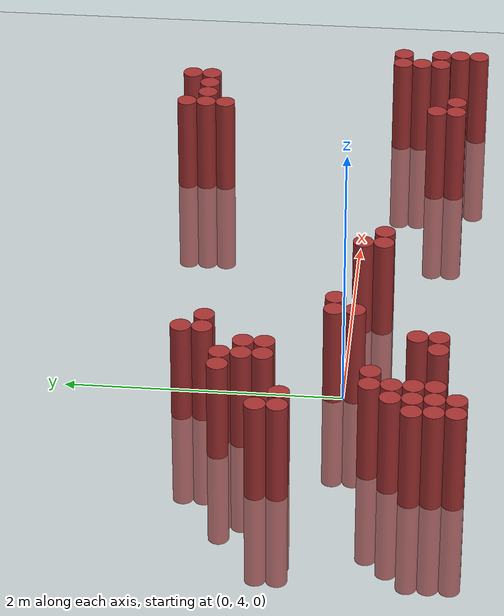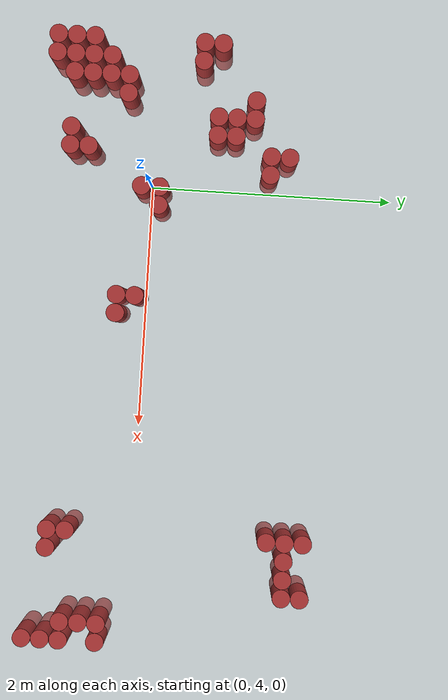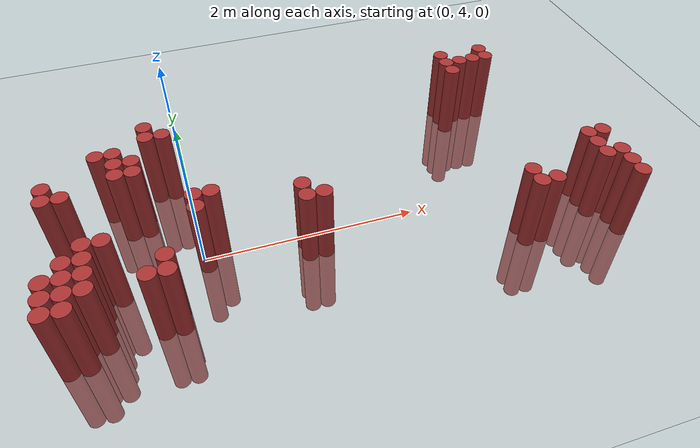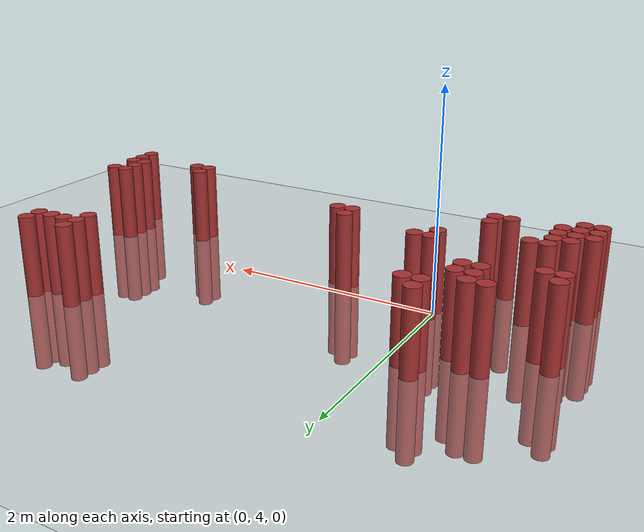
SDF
<sdf version="1.6">
 <world name="default">
  <model name="ground_plane">
   <static>1</static>
   <link name="link">
    <collision name="collision">
     <geometry><plane><normal>0 0 1</normal><size>100 100</size></plane></geometry>
     <surface><friction><ode><mu>100</mu><mu2>50</mu2></ode></friction></surface>
    </collision>
    <visual name="visual">
     <cast_shadows>0</cast_shadows>
     <geometry><plane><normal>0 0 1</normal><size>100 100</size></plane></geometry>
     <material>
      <script><uri>file://media/materials/scripts/gazebo.material</uri><name>Gazebo/Grey</name></script>
     </material>
    </visual>
   </link>
  </model>
  <model name="unit_cylinder_320">
   <static>1</static>
   <pose>-1.175000 3.175000 0.000000 0.000000 0.000000 0.000000</pose>
   <link name="link">
    <inertial>
     <mass>1</mass>
     <inertia><ixx>0.145833</ixx><ixy>0</ixy><ixz>0</ixz><iyy>0.145833</iyy><iyz>0</iyz><izz>0.125</izz></inertia>
    </inertial>
    <collision name="collision">
     <geometry><cylinder><radius>0.075000</radius><length>1.5</length></cylinder></geometry>
    </collision>
    <visual name="visual">
     <geometry><cylinder><radius>0.075000</radius><length>1.5</length></cylinder></geometry>
     <material>
      <ambient>0.648000 0.192000 0.192000 1</ambient>
      <diffuse>0.648000 0.192000 0.192000 1</diffuse>
     </material>
     <material>
      <script><name>Gazebo/Grey</name><uri>file://media/materials/scripts/gazebo.material</uri></script>
     </material>
    </visual>
   </link>
  </model>
  <model name="unit_cylinder_321">
   <static>1</static>
   <pose>-1.175000 3.325000 0.000000 0.000000 0.000000 0.000000</pose>
   <link name="link">
    <inertial>
     <mass>1</mass>
     <inertia><ixx>0.145833</ixx><ixy>0</ixy><ixz>0</ixz><iyy>0.145833</iyy><iyz>0</iyz><izz>0.125</izz></inertia>
    </inertial>
    <collision name="collision">
     <geometry><cylinder><radius>0.075000</radius><length>1.5</length></cylinder></geometry>
    </collision>
    <visual name="visual">
     <geometry><cylinder><radius>0.075000</radius><length>1.5</length></cylinder></geometry>
     <material>
      <ambient>0.648000 0.192000 0.192000 1</ambient>
      <diffuse>0.648000 0.192000 0.192000 1</diffuse>
     </material>
     <material>
      <script><name>Gazebo/Grey</name><uri>file://media/materials/scripts/gazebo.material</uri></script>
     </material>
    </visual>
   </link>
  </model>
  <model name="unit_cylinder_322">
   <static>1</static>
   <pose>-1.175000 3.475000 0.000000 0.000000 0.000000 0.000000</pose>
   <link name="link">
    <inertial>
     <mass>1</mass>
     <inertia><ixx>0.145833</ixx><ixy>0</ixy><ixz>0</ixz><iyy>0.145833</iyy><iyz>0</iyz><izz>0.125</izz></inertia>
    </inertial>
    <collision name="collision">
     <geometry><cylinder><radius>0.075000</radius><length>1.5</length></cylinder></geometry>
    </collision>
    <visual name="visual">
     <geometry><cylinder><radius>0.075000</radius><length>1.5</length></cylinder></geometry>
     <material>
      <ambient>0.648000 0.192000 0.192000 1</ambient>
      <diffuse>0.648000 0.192000 0.192000 1</diffuse>
     </material>
     <material>
      <script><name>Gazebo/Grey</name><uri>file://media/materials/scripts/gazebo.material</uri></script>
     </material>
    </visual>
   </link>
  </model>
  <model name="unit_cylinder_323">
   <static>1</static>
   <pose>-1.175000 4.375000 0.000000 0.000000 0.000000 0.000000</pose>
   <link name="link">
    <inertial>
     <mass>1</mass>
     <inertia><ixx>0.145833</ixx><ixy>0</ixy><ixz>0</ixz><iyy>0.145833</iyy><iyz>0</iyz><izz>0.125</izz></inertia>
    </inertial>
    <collision name="collision">
     <geometry><cylinder><radius>0.075000</radius><length>1.5</length></cylinder></geometry>
    </collision>
    <visual name="visual">
     <geometry><cylinder><radius>0.075000</radius><length>1.5</length></cylinder></geometry>
     <material>
      <ambient>0.648000 0.192000 0.192000 1</ambient>
      <diffuse>0.648000 0.192000 0.192000 1</diffuse>
     </material>
     <material>
      <script><name>Gazebo/Grey</name><uri>file://media/materials/scripts/gazebo.material</uri></script>
     </material>
    </visual>
   </link>
  </model>
  <model name="unit_cylinder_324">
   <static>1</static>
   <pose>-1.175000 4.525000 0.000000 0.000000 0.000000 0.000000</pose>
   <link name="link">
    <inertial>
     <mass>1</mass>
     <inertia><ixx>0.145833</ixx><ixy>0</ixy><ixz>0</ixz><iyy>0.145833</iyy><iyz>0</iyz><izz>0.125</izz></inertia>
    </inertial>
    <collision name="collision">
     <geometry><cylinder><radius>0.075000</radius><length>1.5</length></cylinder></geometry>
    </collision>
    <visual name="visual">
     <geometry><cylinder><radius>0.075000</radius><length>1.5</length></cylinder></geometry>
     <material>
      <ambient>0.648000 0.192000 0.192000 1</ambient>
      <diffuse>0.648000 0.192000 0.192000 1</diffuse>
     </material>
     <material>
      <script><name>Gazebo/Grey</name><uri>file://media/materials/scripts/gazebo.material</uri></script>
     </material>
    </visual>
   </link>
  </model>
  <model name="unit_cylinder_327">
   <static>1</static>
   <pose>-1.025000 3.175000 0.000000 0.000000 0.000000 0.000000</pose>
   <link name="link">
    <inertial>
     <mass>1</mass>
     <inertia><ixx>0.145833</ixx><ixy>0</ixy><ixz>0</ixz><iyy>0.145833</iyy><iyz>0</iyz><izz>0.125</izz></inertia>
    </inertial>
    <collision name="collision">
     <geometry><cylinder><radius>0.075000</radius><length>1.5</length></cylinder></geometry>
    </collision>
    <visual name="visual">
     <geometry><cylinder><radius>0.075000</radius><length>1.5</length></cylinder></geometry>
     <material>
      <ambient>0.648000 0.192000 0.192000 1</ambient>
      <diffuse>0.648000 0.192000 0.192000 1</diffuse>
     </material>
     <material>
      <script><name>Gazebo/Grey</name><uri>file://media/materials/scripts/gazebo.material</uri></script>
     </material>
    </visual>
   </link>
  </model>
  <model name="unit_cylinder_328">
   <static>1</static>
   <pose>-1.025000 3.325000 0.000000 0.000000 0.000000 0.000000</pose>
   <link name="link">
    <inertial>
     <mass>1</mass>
     <inertia><ixx>0.145833</ixx><ixy>0</ixy><ixz>0</ixz><iyy>0.145833</iyy><iyz>0</iyz><izz>0.125</izz></inertia>
    </inertial>
    <collision name="collision">
     <geometry><cylinder><radius>0.075000</radius><length>1.5</length></cylinder></geometry>
    </collision>
    <visual name="visual">
     <geometry><cylinder><radius>0.075000</radius><length>1.5</length></cylinder></geometry>
     <material>
      <ambient>0.648000 0.192000 0.192000 1</ambient>
      <diffuse>0.648000 0.192000 0.192000 1</diffuse>
     </material>
     <material>
      <script><name>Gazebo/Grey</name><uri>file://media/materials/scripts/gazebo.material</uri></script>
     </material>
    </visual>
   </link>
  </model>
  <model name="unit_cylinder_329">
   <static>1</static>
   <pose>-1.025000 3.475000 0.000000 0.000000 0.000000 0.000000</pose>
   <link name="link">
    <inertial>
     <mass>1</mass>
     <inertia><ixx>0.145833</ixx><ixy>0</ixy><ixz>0</ixz><iyy>0.145833</iyy><iyz>0</iyz><izz>0.125</izz></inertia>
    </inertial>
    <collision name="collision">
     <geometry><cylinder><radius>0.075000</radius><length>1.5</length></cylinder></geometry>
    </collision>
    <visual name="visual">
     <geometry><cylinder><radius>0.075000</radius><length>1.5</length></cylinder></geometry>
     <material>
      <ambient>0.648000 0.192000 0.192000 1</ambient>
      <diffuse>0.648000 0.192000 0.192000 1</diffuse>
     </material>
     <material>
      <script><name>Gazebo/Grey</name><uri>file://media/materials/scripts/gazebo.material</uri></script>
     </material>
    </visual>
   </link>
  </model>
  <model name="unit_cylinder_330">
   <static>1</static>
   <pose>-1.025000 3.625000 0.000000 0.000000 0.000000 0.000000</pose>
   <link name="link">
    <inertial>
     <mass>1</mass>
     <inertia><ixx>0.145833</ixx><ixy>0</ixy><ixz>0</ixz><iyy>0.145833</iyy><iyz>0</iyz><izz>0.125</izz></inertia>
    </inertial>
    <collision name="collision">
     <geometry><cylinder><radius>0.075000</radius><length>1.5</length></cylinder></geometry>
    </collision>
    <visual name="visual">
     <geometry><cylinder><radius>0.075000</radius><length>1.5</length></cylinder></geometry>
     <material>
      <ambient>0.648000 0.192000 0.192000 1</ambient>
      <diffuse>0.648000 0.192000 0.192000 1</diffuse>
     </material>
     <material>
      <script><name>Gazebo/Grey</name><uri>file://media/materials/scripts/gazebo.material</uri></script>
     </material>
    </visual>
   </link>
  </model>
  <model name="unit_cylinder_331">
   <static>1</static>
   <pose>-1.025000 4.375000 0.000000 0.000000 0.000000 0.000000</pose>
   <link name="link">
    <inertial>
     <mass>1</mass>
     <inertia><ixx>0.145833</ixx><ixy>0</ixy><ixz>0</ixz><iyy>0.145833</iyy><iyz>0</iyz><izz>0.125</izz></inertia>
    </inertial>
    <collision name="collision">
     <geometry><cylinder><radius>0.075000</radius><length>1.5</length></cylinder></geometry>
    </collision>
    <visual name="visual">
     <geometry><cylinder><radius>0.075000</radius><length>1.5</length></cylinder></geometry>
     <material>
      <ambient>0.648000 0.192000 0.192000 1</ambient>
      <diffuse>0.648000 0.192000 0.192000 1</diffuse>
     </material>
     <material>
      <script><name>Gazebo/Grey</name><uri>file://media/materials/scripts/gazebo.material</uri></script>
     </material>
    </visual>
   </link>
  </model>
  <model name="unit_cylinder_332">
   <static>1</static>
   <pose>-0.875000 3.325000 0.000000 0.000000 0.000000 0.000000</pose>
   <link name="link">
    <inertial>
     <mass>1</mass>
     <inertia><ixx>0.145833</ixx><ixy>0</ixy><ixz>0</ixz><iyy>0.145833</iyy><iyz>0</iyz><izz>0.125</izz></inertia>
    </inertial>
    <collision name="collision">
     <geometry><cylinder><radius>0.075000</radius><length>1.5</length></cylinder></geometry>
    </collision>
    <visual name="visual">
     <geometry><cylinder><radius>0.075000</radius><length>1.5</length></cylinder></geometry>
     <material>
      <ambient>0.648000 0.192000 0.192000 1</ambient>
      <diffuse>0.648000 0.192000 0.192000 1</diffuse>
     </material>
     <material>
      <script><name>Gazebo/Grey</name><uri>file://media/materials/scripts/gazebo.material</uri></script>
     </material>
    </visual>
   </link>
  </model>
  <model name="unit_cylinder_333">
   <static>1</static>
   <pose>-0.875000 3.475000 0.000000 0.000000 0.000000 0.000000</pose>
   <link name="link">
    <inertial>
     <mass>1</mass>
     <inertia><ixx>0.145833</ixx><ixy>0</ixy><ixz>0</ixz><iyy>0.145833</iyy><iyz>0</iyz><izz>0.125</izz></inertia>
    </inertial>
    <collision name="collision">
     <geometry><cylinder><radius>0.075000</radius><length>1.5</length></cylinder></geometry>
    </collision>
    <visual name="visual">
     <geometry><cylinder><radius>0.075000</radius><length>1.5</length></cylinder></geometry>
     <material>
      <ambient>0.648000 0.192000 0.192000 1</ambient>
      <diffuse>0.648000 0.192000 0.192000 1</diffuse>
     </material>
     <material>
      <script><name>Gazebo/Grey</name><uri>file://media/materials/scripts/gazebo.material</uri></script>
     </material>
    </visual>
   </link>
  </model>
  <model name="unit_cylinder_334">
   <static>1</static>
   <pose>-0.875000 3.625000 0.000000 0.000000 0.000000 0.000000</pose>
   <link name="link">
    <inertial>
     <mass>1</mass>
     <inertia><ixx>0.145833</ixx><ixy>0</ixy><ixz>0</ixz><iyy>0.145833</iyy><iyz>0</iyz><izz>0.125</izz></inertia>
    </inertial>
    <collision name="collision">
     <geometry><cylinder><radius>0.075000</radius><length>1.5</length></cylinder></geometry>
    </collision>
    <visual name="visual">
     <geometry><cylinder><radius>0.075000</radius><length>1.5</length></cylinder></geometry>
     <material>
      <ambient>0.648000 0.192000 0.192000 1</ambient>
      <diffuse>0.648000 0.192000 0.192000 1</diffuse>
     </material>
     <material>
      <script><name>Gazebo/Grey</name><uri>file://media/materials/scripts/gazebo.material</uri></script>
     </material>
    </visual>
   </link>
  </model>
  <model name="unit_cylinder_335">
   <static>1</static>
   <pose>-0.875000 3.775000 0.000000 0.000000 0.000000 0.000000</pose>
   <link name="link">
    <inertial>
     <mass>1</mass>
     <inertia><ixx>0.145833</ixx><ixy>0</ixy><ixz>0</ixz><iyy>0.145833</iyy><iyz>0</iyz><izz>0.125</izz></inertia>
    </inertial>
    <collision name="collision">
     <geometry><cylinder><radius>0.075000</radius><length>1.5</length></cylinder></geometry>
    </collision>
    <visual name="visual">
     <geometry><cylinder><radius>0.075000</radius><length>1.5</length></cylinder></geometry>
     <material>
      <ambient>0.648000 0.192000 0.192000 1</ambient>
      <diffuse>0.648000 0.192000 0.192000 1</diffuse>
     </material>
     <material>
      <script><name>Gazebo/Grey</name><uri>file://media/materials/scripts/gazebo.material</uri></script>
     </material>
    </visual>
   </link>
  </model>
  <model name="unit_cylinder_336">
   <static>1</static>
   <pose>-0.725000 3.775000 0.000000 0.000000 0.000000 0.000000</pose>
   <link name="link">
    <inertial>
     <mass>1</mass>
     <inertia><ixx>0.145833</ixx><ixy>0</ixy><ixz>0</ixz><iyy>0.145833</iyy><iyz>0</iyz><izz>0.125</izz></inertia>
    </inertial>
    <collision name="collision">
     <geometry><cylinder><radius>0.075000</radius><length>1.5</length></cylinder></geometry>
    </collision>
    <visual name="visual">
     <geometry><cylinder><radius>0.075000</radius><length>1.5</length></cylinder></geometry>
     <material>
      <ambient>0.648000 0.192000 0.192000 1</ambient>
      <diffuse>0.648000 0.192000 0.192000 1</diffuse>
     </material>
     <material>
      <script><name>Gazebo/Grey</name><uri>file://media/materials/scripts/gazebo.material</uri></script>
     </material>
    </visual>
   </link>
  </model>
  <model name="unit_cylinder_337">
   <static>1</static>
   <pose>-0.725000 4.825000 0.000000 0.000000 0.000000 0.000000</pose>
   <link name="link">
    <inertial>
     <mass>1</mass>
     <inertia><ixx>0.145833</ixx><ixy>0</ixy><ixz>0</ixz><iyy>0.145833</iyy><iyz>0</iyz><izz>0.125</izz></inertia>
    </inertial>
    <collision name="collision">
     <geometry><cylinder><radius>0.075000</radius><length>1.5</length></cylinder></geometry>
    </collision>
    <visual name="visual">
     <geometry><cylinder><radius>0.075000</radius><length>1.5</length></cylinder></geometry>
     <material>
      <ambient>0.648000 0.192000 0.192000 1</ambient>
      <diffuse>0.648000 0.192000 0.192000 1</diffuse>
     </material>
     <material>
      <script><name>Gazebo/Grey</name><uri>file://media/materials/scripts/gazebo.material</uri></script>
     </material>
    </visual>
   </link>
  </model>
  <model name="unit_cylinder_338">
   <static>1</static>
   <pose>-0.575000 4.525000 0.000000 0.000000 0.000000 0.000000</pose>
   <link name="link">
    <inertial>
     <mass>1</mass>
     <inertia><ixx>0.145833</ixx><ixy>0</ixy><ixz>0</ixz><iyy>0.145833</iyy><iyz>0</iyz><izz>0.125</izz></inertia>
    </inertial>
    <collision name="collision">
     <geometry><cylinder><radius>0.075000</radius><length>1.5</length></cylinder></geometry>
    </collision>
    <visual name="visual">
     <geometry><cylinder><radius>0.075000</radius><length>1.5</length></cylinder></geometry>
     <material>
      <ambient>0.648000 0.192000 0.192000 1</ambient>
      <diffuse>0.648000 0.192000 0.192000 1</diffuse>
     </material>
     <material>
      <script><name>Gazebo/Grey</name><uri>file://media/materials/scripts/gazebo.material</uri></script>
     </material>
    </visual>
   </link>
  </model>
  <model name="unit_cylinder_339">
   <static>1</static>
   <pose>-0.575000 4.675000 0.000000 0.000000 0.000000 0.000000</pose>
   <link name="link">
    <inertial>
     <mass>1</mass>
     <inertia><ixx>0.145833</ixx><ixy>0</ixy><ixz>0</ixz><iyy>0.145833</iyy><iyz>0</iyz><izz>0.125</izz></inertia>
    </inertial>
    <collision name="collision">
     <geometry><cylinder><radius>0.075000</radius><length>1.5</length></cylinder></geometry>
    </collision>
    <visual name="visual">
     <geometry><cylinder><radius>0.075000</radius><length>1.5</length></cylinder></geometry>
     <material>
      <ambient>0.648000 0.192000 0.192000 1</ambient>
      <diffuse>0.648000 0.192000 0.192000 1</diffuse>
     </material>
     <material>
      <script><name>Gazebo/Grey</name><uri>file://media/materials/scripts/gazebo.material</uri></script>
     </material>
    </visual>
   </link>
  </model>
  <model name="unit_cylinder_340">
   <static>1</static>
   <pose>-0.575000 4.825000 0.000000 0.000000 0.000000 0.000000</pose>
   <link name="link">
    <inertial>
     <mass>1</mass>
     <inertia><ixx>0.145833</ixx><ixy>0</ixy><ixz>0</ixz><iyy>0.145833</iyy><iyz>0</iyz><izz>0.125</izz></inertia>
    </inertial>
    <collision name="collision">
     <geometry><cylinder><radius>0.075000</radius><length>1.5</length></cylinder></geometry>
    </collision>
    <visual name="visual">
     <geometry><cylinder><radius>0.075000</radius><length>1.5</length></cylinder></geometry>
     <material>
      <ambient>0.648000 0.192000 0.192000 1</ambient>
      <diffuse>0.648000 0.192000 0.192000 1</diffuse>
     </material>
     <material>
      <script><name>Gazebo/Grey</name><uri>file://media/materials/scripts/gazebo.material</uri></script>
     </material>
    </visual>
   </link>
  </model>
  <model name="unit_cylinder_341">
   <static>1</static>
   <pose>-0.425000 3.325000 0.000000 0.000000 0.000000 0.000000</pose>
   <link name="link">
    <inertial>
     <mass>1</mass>
     <inertia><ixx>0.145833</ixx><ixy>0</ixy><ixz>0</ixz><iyy>0.145833</iyy><iyz>0</iyz><izz>0.125</izz></inertia>
    </inertial>
    <collision name="collision">
     <geometry><cylinder><radius>0.075000</radius><length>1.5</length></cylinder></geometry>
    </collision>
    <visual name="visual">
     <geometry><cylinder><radius>0.075000</radius><length>1.5</length></cylinder></geometry>
     <material>
      <ambient>0.648000 0.192000 0.192000 1</ambient>
      <diffuse>0.648000 0.192000 0.192000 1</diffuse>
     </material>
     <material>
      <script><name>Gazebo/Grey</name><uri>file://media/materials/scripts/gazebo.material</uri></script>
     </material>
    </visual>
   </link>
  </model>
  <model name="unit_cylinder_342">
   <static>1</static>
   <pose>-0.425000 4.525000 0.000000 0.000000 0.000000 0.000000</pose>
   <link name="link">
    <inertial>
     <mass>1</mass>
     <inertia><ixx>0.145833</ixx><ixy>0</ixy><ixz>0</ixz><iyy>0.145833</iyy><iyz>0</iyz><izz>0.125</izz></inertia>
    </inertial>
    <collision name="collision">
     <geometry><cylinder><radius>0.075000</radius><length>1.5</length></cylinder></geometry>
    </collision>
    <visual name="visual">
     <geometry><cylinder><radius>0.075000</radius><length>1.5</length></cylinder></geometry>
     <material>
      <ambient>0.648000 0.192000 0.192000 1</ambient>
      <diffuse>0.648000 0.192000 0.192000 1</diffuse>
     </material>
     <material>
      <script><name>Gazebo/Grey</name><uri>file://media/materials/scripts/gazebo.material</uri></script>
     </material>
    </visual>
   </link>
  </model>
  <model name="unit_cylinder_343">
   <static>1</static>
   <pose>-0.425000 4.675000 0.000000 0.000000 0.000000 0.000000</pose>
   <link name="link">
    <inertial>
     <mass>1</mass>
     <inertia><ixx>0.145833</ixx><ixy>0</ixy><ixz>0</ixz><iyy>0.145833</iyy><iyz>0</iyz><izz>0.125</izz></inertia>
    </inertial>
    <collision name="collision">
     <geometry><cylinder><radius>0.075000</radius><length>1.5</length></cylinder></geometry>
    </collision>
    <visual name="visual">
     <geometry><cylinder><radius>0.075000</radius><length>1.5</length></cylinder></geometry>
     <material>
      <ambient>0.648000 0.192000 0.192000 1</ambient>
      <diffuse>0.648000 0.192000 0.192000 1</diffuse>
     </material>
     <material>
      <script><name>Gazebo/Grey</name><uri>file://media/materials/scripts/gazebo.material</uri></script>
     </material>
    </visual>
   </link>
  </model>
  <model name="unit_cylinder_344">
   <static>1</static>
   <pose>-0.275000 3.325000 0.000000 0.000000 0.000000 0.000000</pose>
   <link name="link">
    <inertial>
     <mass>1</mass>
     <inertia><ixx>0.145833</ixx><ixy>0</ixy><ixz>0</ixz><iyy>0.145833</iyy><iyz>0</iyz><izz>0.125</izz></inertia>
    </inertial>
    <collision name="collision">
     <geometry><cylinder><radius>0.075000</radius><length>1.5</length></cylinder></geometry>
    </collision>
    <visual name="visual">
     <geometry><cylinder><radius>0.075000</radius><length>1.5</length></cylinder></geometry>
     <material>
      <ambient>0.648000 0.192000 0.192000 1</ambient>
      <diffuse>0.648000 0.192000 0.192000 1</diffuse>
     </material>
     <material>
      <script><name>Gazebo/Grey</name><uri>file://media/materials/scripts/gazebo.material</uri></script>
     </material>
    </visual>
   </link>
  </model>
  <model name="unit_cylinder_345">
   <static>1</static>
   <pose>-0.275000 3.475000 0.000000 0.000000 0.000000 0.000000</pose>
   <link name="link">
    <inertial>
     <mass>1</mass>
     <inertia><ixx>0.145833</ixx><ixy>0</ixy><ixz>0</ixz><iyy>0.145833</iyy><iyz>0</iyz><izz>0.125</izz></inertia>
    </inertial>
    <collision name="collision">
     <geometry><cylinder><radius>0.075000</radius><length>1.5</length></cylinder></geometry>
    </collision>
    <visual name="visual">
     <geometry><cylinder><radius>0.075000</radius><length>1.5</length></cylinder></geometry>
     <material>
      <ambient>0.648000 0.192000 0.192000 1</ambient>
      <diffuse>0.648000 0.192000 0.192000 1</diffuse>
     </material>
     <material>
      <script><name>Gazebo/Grey</name><uri>file://media/materials/scripts/gazebo.material</uri></script>
     </material>
    </visual>
   </link>
  </model>
  <model name="unit_cylinder_346">
   <static>1</static>
   <pose>-0.275000 4.975000 0.000000 0.000000 0.000000 0.000000</pose>
   <link name="link">
    <inertial>
     <mass>1</mass>
     <inertia><ixx>0.145833</ixx><ixy>0</ixy><ixz>0</ixz><iyy>0.145833</iyy><iyz>0</iyz><izz>0.125</izz></inertia>
    </inertial>
    <collision name="collision">
     <geometry><cylinder><radius>0.075000</radius><length>1.5</length></cylinder></geometry>
    </collision>
    <visual name="visual">
     <geometry><cylinder><radius>0.075000</radius><length>1.5</length></cylinder></geometry>
     <material>
      <ambient>0.648000 0.192000 0.192000 1</ambient>
      <diffuse>0.648000 0.192000 0.192000 1</diffuse>
     </material>
     <material>
      <script><name>Gazebo/Grey</name><uri>file://media/materials/scripts/gazebo.material</uri></script>
     </material>
    </visual>
   </link>
  </model>
  <model name="unit_cylinder_347">
   <static>1</static>
   <pose>-0.275000 5.125000 0.000000 0.000000 0.000000 0.000000</pose>
   <link name="link">
    <inertial>
     <mass>1</mass>
     <inertia><ixx>0.145833</ixx><ixy>0</ixy><ixz>0</ixz><iyy>0.145833</iyy><iyz>0</iyz><izz>0.125</izz></inertia>
    </inertial>
    <collision name="collision">
     <geometry><cylinder><radius>0.075000</radius><length>1.5</length></cylinder></geometry>
    </collision>
    <visual name="visual">
     <geometry><cylinder><radius>0.075000</radius><length>1.5</length></cylinder></geometry>
     <material>
      <ambient>0.648000 0.192000 0.192000 1</ambient>
      <diffuse>0.648000 0.192000 0.192000 1</diffuse>
     </material>
     <material>
      <script><name>Gazebo/Grey</name><uri>file://media/materials/scripts/gazebo.material</uri></script>
     </material>
    </visual>
   </link>
  </model>
  <model name="unit_cylinder_348">
   <static>1</static>
   <pose>-0.125000 4.975000 0.000000 0.000000 0.000000 0.000000</pose>
   <link name="link">
    <inertial>
     <mass>1</mass>
     <inertia><ixx>0.145833</ixx><ixy>0</ixy><ixz>0</ixz><iyy>0.145833</iyy><iyz>0</iyz><izz>0.125</izz></inertia>
    </inertial>
    <collision name="collision">
     <geometry><cylinder><radius>0.075000</radius><length>1.5</length></cylinder></geometry>
    </collision>
    <visual name="visual">
     <geometry><cylinder><radius>0.075000</radius><length>1.5</length></cylinder></geometry>
     <material>
      <ambient>0.648000 0.192000 0.192000 1</ambient>
      <diffuse>0.648000 0.192000 0.192000 1</diffuse>
     </material>
     <material>
      <script><name>Gazebo/Grey</name><uri>file://media/materials/scripts/gazebo.material</uri></script>
     </material>
    </visual>
   </link>
  </model>
  <model name="unit_cylinder_349">
   <static>1</static>
   <pose>0.025000 3.925000 0.000000 0.000000 0.000000 0.000000</pose>
   <link name="link">
    <inertial>
     <mass>1</mass>
     <inertia><ixx>0.145833</ixx><ixy>0</ixy><ixz>0</ixz><iyy>0.145833</iyy><iyz>0</iyz><izz>0.125</izz></inertia>
    </inertial>
    <collision name="collision">
     <geometry><cylinder><radius>0.075000</radius><length>1.5</length></cylinder></geometry>
    </collision>
    <visual name="visual">
     <geometry><cylinder><radius>0.075000</radius><length>1.5</length></cylinder></geometry>
     <material>
      <ambient>0.648000 0.192000 0.192000 1</ambient>
      <diffuse>0.648000 0.192000 0.192000 1</diffuse>
     </material>
     <material>
      <script><name>Gazebo/Grey</name><uri>file://media/materials/scripts/gazebo.material</uri></script>
     </material>
    </visual>
   </link>
  </model>
  <model name="unit_cylinder_350">
   <static>1</static>
   <pose>0.025000 4.075000 0.000000 0.000000 0.000000 0.000000</pose>
   <link name="link">
    <inertial>
     <mass>1</mass>
     <inertia><ixx>0.145833</ixx><ixy>0</ixy><ixz>0</ixz><iyy>0.145833</iyy><iyz>0</iyz><izz>0.125</izz></inertia>
    </inertial>
    <collision name="collision">
     <geometry><cylinder><radius>0.075000</radius><length>1.5</length></cylinder></geometry>
    </collision>
    <visual name="visual">
     <geometry><cylinder><radius>0.075000</radius><length>1.5</length></cylinder></geometry>
     <material>
      <ambient>0.648000 0.192000 0.192000 1</ambient>
      <diffuse>0.648000 0.192000 0.192000 1</diffuse>
     </material>
     <material>
      <script><name>Gazebo/Grey</name><uri>file://media/materials/scripts/gazebo.material</uri></script>
     </material>
    </visual>
   </link>
  </model>
  <model name="unit_cylinder_352">
   <static>1</static>
   <pose>0.175000 4.075000 0.000000 0.000000 0.000000 0.000000</pose>
   <link name="link">
    <inertial>
     <mass>1</mass>
     <inertia><ixx>0.145833</ixx><ixy>0</ixy><ixz>0</ixz><iyy>0.145833</iyy><iyz>0</iyz><izz>0.125</izz></inertia>
    </inertial>
    <collision name="collision">
     <geometry><cylinder><radius>0.075000</radius><length>1.5</length></cylinder></geometry>
    </collision>
    <visual name="visual">
     <geometry><cylinder><radius>0.075000</radius><length>1.5</length></cylinder></geometry>
     <material>
      <ambient>0.648000 0.192000 0.192000 1</ambient>
      <diffuse>0.648000 0.192000 0.192000 1</diffuse>
     </material>
     <material>
      <script><name>Gazebo/Grey</name><uri>file://media/materials/scripts/gazebo.material</uri></script>
     </material>
    </visual>
   </link>
  </model>
  <model name="unit_cylinder_363">
   <static>1</static>
   <pose>0.925000 3.775000 0.000000 0.000000 0.000000 0.000000</pose>
   <link name="link">
    <inertial>
     <mass>1</mass>
     <inertia><ixx>0.145833</ixx><ixy>0</ixy><ixz>0</ixz><iyy>0.145833</iyy><iyz>0</iyz><izz>0.125</izz></inertia>
    </inertial>
    <collision name="collision">
     <geometry><cylinder><radius>0.075000</radius><length>1.5</length></cylinder></geometry>
    </collision>
    <visual name="visual">
     <geometry><cylinder><radius>0.075000</radius><length>1.5</length></cylinder></geometry>
     <material>
      <ambient>0.648000 0.192000 0.192000 1</ambient>
      <diffuse>0.648000 0.192000 0.192000 1</diffuse>
     </material>
     <material>
      <script><name>Gazebo/Grey</name><uri>file://media/materials/scripts/gazebo.material</uri></script>
     </material>
    </visual>
   </link>
  </model>
  <model name="unit_cylinder_364">
   <static>1</static>
   <pose>0.925000 3.925000 0.000000 0.000000 0.000000 0.000000</pose>
   <link name="link">
    <inertial>
     <mass>1</mass>
     <inertia><ixx>0.145833</ixx><ixy>0</ixy><ixz>0</ixz><iyy>0.145833</iyy><iyz>0</iyz><izz>0.125</izz></inertia>
    </inertial>
    <collision name="collision">
     <geometry><cylinder><radius>0.075000</radius><length>1.5</length></cylinder></geometry>
    </collision>
    <visual name="visual">
     <geometry><cylinder><radius>0.075000</radius><length>1.5</length></cylinder></geometry>
     <material>
      <ambient>0.648000 0.192000 0.192000 1</ambient>
      <diffuse>0.648000 0.192000 0.192000 1</diffuse>
     </material>
     <material>
      <script><name>Gazebo/Grey</name><uri>file://media/materials/scripts/gazebo.material</uri></script>
     </material>
    </visual>
   </link>
  </model>
  <model name="unit_cylinder_365">
   <static>1</static>
   <pose>1.075000 3.775000 0.000000 0.000000 0.000000 0.000000</pose>
   <link name="link">
    <inertial>
     <mass>1</mass>
     <inertia><ixx>0.145833</ixx><ixy>0</ixy><ixz>0</ixz><iyy>0.145833</iyy><iyz>0</iyz><izz>0.125</izz></inertia>
    </inertial>
    <collision name="collision">
     <geometry><cylinder><radius>0.075000</radius><length>1.5</length></cylinder></geometry>
    </collision>
    <visual name="visual">
     <geometry><cylinder><radius>0.075000</radius><length>1.5</length></cylinder></geometry>
     <material>
      <ambient>0.648000 0.192000 0.192000 1</ambient>
      <diffuse>0.648000 0.192000 0.192000 1</diffuse>
     </material>
     <material>
      <script><name>Gazebo/Grey</name><uri>file://media/materials/scripts/gazebo.material</uri></script>
     </material>
    </visual>
   </link>
  </model>
  <model name="unit_cylinder_393">
   <static>1</static>
   <pose>2.875000 3.325000 0.000000 0.000000 0.000000 0.000000</pose>
   <link name="link">
    <inertial>
     <mass>1</mass>
     <inertia><ixx>0.145833</ixx><ixy>0</ixy><ixz>0</ixz><iyy>0.145833</iyy><iyz>0</iyz><izz>0.125</izz></inertia>
    </inertial>
    <collision name="collision">
     <geometry><cylinder><radius>0.075000</radius><length>1.5</length></cylinder></geometry>
    </collision>
    <visual name="visual">
     <geometry><cylinder><radius>0.075000</radius><length>1.5</length></cylinder></geometry>
     <material>
      <ambient>0.648000 0.192000 0.192000 1</ambient>
      <diffuse>0.648000 0.192000 0.192000 1</diffuse>
     </material>
     <material>
      <script><name>Gazebo/Grey</name><uri>file://media/materials/scripts/gazebo.material</uri></script>
     </material>
    </visual>
   </link>
  </model>
  <model name="unit_cylinder_394">
   <static>1</static>
   <pose>2.875000 3.475000 0.000000 0.000000 0.000000 0.000000</pose>
   <link name="link">
    <inertial>
     <mass>1</mass>
     <inertia><ixx>0.145833</ixx><ixy>0</ixy><ixz>0</ixz><iyy>0.145833</iyy><iyz>0</iyz><izz>0.125</izz></inertia>
    </inertial>
    <collision name="collision">
     <geometry><cylinder><radius>0.075000</radius><length>1.5</length></cylinder></geometry>
    </collision>
    <visual name="visual">
     <geometry><cylinder><radius>0.075000</radius><length>1.5</length></cylinder></geometry>
     <material>
      <ambient>0.648000 0.192000 0.192000 1</ambient>
      <diffuse>0.648000 0.192000 0.192000 1</diffuse>
     </material>
     <material>
      <script><name>Gazebo/Grey</name><uri>file://media/materials/scripts/gazebo.material</uri></script>
     </material>
    </visual>
   </link>
  </model>
  <model name="unit_cylinder_395">
   <static>1</static>
   <pose>2.875000 5.125000 0.000000 0.000000 0.000000 0.000000</pose>
   <link name="link">
    <inertial>
     <mass>1</mass>
     <inertia><ixx>0.145833</ixx><ixy>0</ixy><ixz>0</ixz><iyy>0.145833</iyy><iyz>0</iyz><izz>0.125</izz></inertia>
    </inertial>
    <collision name="collision">
     <geometry><cylinder><radius>0.075000</radius><length>1.5</length></cylinder></geometry>
    </collision>
    <visual name="visual">
     <geometry><cylinder><radius>0.075000</radius><length>1.5</length></cylinder></geometry>
     <material>
      <ambient>0.648000 0.192000 0.192000 1</ambient>
      <diffuse>0.648000 0.192000 0.192000 1</diffuse>
     </material>
     <material>
      <script><name>Gazebo/Grey</name><uri>file://media/materials/scripts/gazebo.material</uri></script>
     </material>
    </visual>
   </link>
  </model>
  <model name="unit_cylinder_396">
   <static>1</static>
   <pose>2.875000 5.275000 0.000000 0.000000 0.000000 0.000000</pose>
   <link name="link">
    <inertial>
     <mass>1</mass>
     <inertia><ixx>0.145833</ixx><ixy>0</ixy><ixz>0</ixz><iyy>0.145833</iyy><iyz>0</iyz><izz>0.125</izz></inertia>
    </inertial>
    <collision name="collision">
     <geometry><cylinder><radius>0.075000</radius><length>1.5</length></cylinder></geometry>
    </collision>
    <visual name="visual">
     <geometry><cylinder><radius>0.075000</radius><length>1.5</length></cylinder></geometry>
     <material>
      <ambient>0.648000 0.192000 0.192000 1</ambient>
      <diffuse>0.648000 0.192000 0.192000 1</diffuse>
     </material>
     <material>
      <script><name>Gazebo/Grey</name><uri>file://media/materials/scripts/gazebo.material</uri></script>
     </material>
    </visual>
   </link>
  </model>
  <model name="unit_cylinder_397">
   <static>1</static>
   <pose>2.875000 5.425000 0.000000 0.000000 0.000000 0.000000</pose>
   <link name="link">
    <inertial>
     <mass>1</mass>
     <inertia><ixx>0.145833</ixx><ixy>0</ixy><ixz>0</ixz><iyy>0.145833</iyy><iyz>0</iyz><izz>0.125</izz></inertia>
    </inertial>
    <collision name="collision">
     <geometry><cylinder><radius>0.075000</radius><length>1.5</length></cylinder></geometry>
    </collision>
    <visual name="visual">
     <geometry><cylinder><radius>0.075000</radius><length>1.5</length></cylinder></geometry>
     <material>
      <ambient>0.648000 0.192000 0.192000 1</ambient>
      <diffuse>0.648000 0.192000 0.192000 1</diffuse>
     </material>
     <material>
      <script><name>Gazebo/Grey</name><uri>file://media/materials/scripts/gazebo.material</uri></script>
     </material>
    </visual>
   </link>
  </model>
  <model name="unit_cylinder_400">
   <static>1</static>
   <pose>3.025000 3.325000 0.000000 0.000000 0.000000 0.000000</pose>
   <link name="link">
    <inertial>
     <mass>1</mass>
     <inertia><ixx>0.145833</ixx><ixy>0</ixy><ixz>0</ixz><iyy>0.145833</iyy><iyz>0</iyz><izz>0.125</izz></inertia>
    </inertial>
    <collision name="collision">
     <geometry><cylinder><radius>0.075000</radius><length>1.5</length></cylinder></geometry>
    </collision>
    <visual name="visual">
     <geometry><cylinder><radius>0.075000</radius><length>1.5</length></cylinder></geometry>
     <material>
      <ambient>0.648000 0.192000 0.192000 1</ambient>
      <diffuse>0.648000 0.192000 0.192000 1</diffuse>
     </material>
     <material>
      <script><name>Gazebo/Grey</name><uri>file://media/materials/scripts/gazebo.material</uri></script>
     </material>
    </visual>
   </link>
  </model>
  <model name="unit_cylinder_401">
   <static>1</static>
   <pose>3.025000 5.275000 0.000000 0.000000 0.000000 0.000000</pose>
   <link name="link">
    <inertial>
     <mass>1</mass>
     <inertia><ixx>0.145833</ixx><ixy>0</ixy><ixz>0</ixz><iyy>0.145833</iyy><iyz>0</iyz><izz>0.125</izz></inertia>
    </inertial>
    <collision name="collision">
     <geometry><cylinder><radius>0.075000</radius><length>1.5</length></cylinder></geometry>
    </collision>
    <visual name="visual">
     <geometry><cylinder><radius>0.075000</radius><length>1.5</length></cylinder></geometry>
     <material>
      <ambient>0.648000 0.192000 0.192000 1</ambient>
      <diffuse>0.648000 0.192000 0.192000 1</diffuse>
     </material>
     <material>
      <script><name>Gazebo/Grey</name><uri>file://media/materials/scripts/gazebo.material</uri></script>
     </material>
    </visual>
   </link>
  </model>
  <model name="unit_cylinder_406">
   <static>1</static>
   <pose>3.175000 5.275000 0.000000 0.000000 0.000000 0.000000</pose>
   <link name="link">
    <inertial>
     <mass>1</mass>
     <inertia><ixx>0.145833</ixx><ixy>0</ixy><ixz>0</ixz><iyy>0.145833</iyy><iyz>0</iyz><izz>0.125</izz></inertia>
    </inertial>
    <collision name="collision">
     <geometry><cylinder><radius>0.075000</radius><length>1.5</length></cylinder></geometry>
    </collision>
    <visual name="visual">
     <geometry><cylinder><radius>0.075000</radius><length>1.5</length></cylinder></geometry>
     <material>
      <ambient>0.648000 0.192000 0.192000 1</ambient>
      <diffuse>0.648000 0.192000 0.192000 1</diffuse>
     </material>
     <material>
      <script><name>Gazebo/Grey</name><uri>file://media/materials/scripts/gazebo.material</uri></script>
     </material>
    </visual>
   </link>
  </model>
  <model name="unit_cylinder_409">
   <static>1</static>
   <pose>3.325000 5.275000 0.000000 0.000000 0.000000 0.000000</pose>
   <link name="link">
    <inertial>
     <mass>1</mass>
     <inertia><ixx>0.145833</ixx><ixy>0</ixy><ixz>0</ixz><iyy>0.145833</iyy><iyz>0</iyz><izz>0.125</izz></inertia>
    </inertial>
    <collision name="collision">
     <geometry><cylinder><radius>0.075000</radius><length>1.5</length></cylinder></geometry>
    </collision>
    <visual name="visual">
     <geometry><cylinder><radius>0.075000</radius><length>1.5</length></cylinder></geometry>
     <material>
      <ambient>0.648000 0.192000 0.192000 1</ambient>
      <diffuse>0.648000 0.192000 0.192000 1</diffuse>
     </material>
     <material>
      <script><name>Gazebo/Grey</name><uri>file://media/materials/scripts/gazebo.material</uri></script>
     </material>
    </visual>
   </link>
  </model>
  <model name="unit_cylinder_410">
   <static>1</static>
   <pose>3.325000 5.425000 0.000000 0.000000 0.000000 0.000000</pose>
   <link name="link">
    <inertial>
     <mass>1</mass>
     <inertia><ixx>0.145833</ixx><ixy>0</ixy><ixz>0</ixz><iyy>0.145833</iyy><iyz>0</iyz><izz>0.125</izz></inertia>
    </inertial>
    <collision name="collision">
     <geometry><cylinder><radius>0.075000</radius><length>1.5</length></cylinder></geometry>
    </collision>
    <visual name="visual">
     <geometry><cylinder><radius>0.075000</radius><length>1.5</length></cylinder></geometry>
     <material>
      <ambient>0.648000 0.192000 0.192000 1</ambient>
      <diffuse>0.648000 0.192000 0.192000 1</diffuse>
     </material>
     <material>
      <script><name>Gazebo/Grey</name><uri>file://media/materials/scripts/gazebo.material</uri></script>
     </material>
    </visual>
   </link>
  </model>
  <model name="unit_cylinder_420">
   <static>1</static>
   <pose>3.625000 3.475000 0.000000 0.000000 0.000000 0.000000</pose>
   <link name="link">
    <inertial>
     <mass>1</mass>
     <inertia><ixx>0.145833</ixx><ixy>0</ixy><ixz>0</ixz><iyy>0.145833</iyy><iyz>0</iyz><izz>0.125</izz></inertia>
    </inertial>
    <collision name="collision">
     <geometry><cylinder><radius>0.075000</radius><length>1.5</length></cylinder></geometry>
    </collision>
    <visual name="visual">
     <geometry><cylinder><radius>0.075000</radius><length>1.5</length></cylinder></geometry>
     <material>
      <ambient>0.648000 0.192000 0.192000 1</ambient>
      <diffuse>0.648000 0.192000 0.192000 1</diffuse>
     </material>
     <material>
      <script><name>Gazebo/Grey</name><uri>file://media/materials/scripts/gazebo.material</uri></script>
     </material>
    </visual>
   </link>
  </model>
  <model name="unit_cylinder_421">
   <static>1</static>
   <pose>3.625000 3.625000 0.000000 0.000000 0.000000 0.000000</pose>
   <link name="link">
    <inertial>
     <mass>1</mass>
     <inertia><ixx>0.145833</ixx><ixy>0</ixy><ixz>0</ixz><iyy>0.145833</iyy><iyz>0</iyz><izz>0.125</izz></inertia>
    </inertial>
    <collision name="collision">
     <geometry><cylinder><radius>0.075000</radius><length>1.5</length></cylinder></geometry>
    </collision>
    <visual name="visual">
     <geometry><cylinder><radius>0.075000</radius><length>1.5</length></cylinder></geometry>
     <material>
      <ambient>0.648000 0.192000 0.192000 1</ambient>
      <diffuse>0.648000 0.192000 0.192000 1</diffuse>
     </material>
     <material>
      <script><name>Gazebo/Grey</name><uri>file://media/materials/scripts/gazebo.material</uri></script>
     </material>
    </visual>
   </link>
  </model>
  <model name="unit_cylinder_422">
   <static>1</static>
   <pose>3.625000 3.775000 0.000000 0.000000 0.000000 0.000000</pose>
   <link name="link">
    <inertial>
     <mass>1</mass>
     <inertia><ixx>0.145833</ixx><ixy>0</ixy><ixz>0</ixz><iyy>0.145833</iyy><iyz>0</iyz><izz>0.125</izz></inertia>
    </inertial>
    <collision name="collision">
     <geometry><cylinder><radius>0.075000</radius><length>1.5</length></cylinder></geometry>
    </collision>
    <visual name="visual">
     <geometry><cylinder><radius>0.075000</radius><length>1.5</length></cylinder></geometry>
     <material>
      <ambient>0.648000 0.192000 0.192000 1</ambient>
      <diffuse>0.648000 0.192000 0.192000 1</diffuse>
     </material>
     <material>
      <script><name>Gazebo/Grey</name><uri>file://media/materials/scripts/gazebo.material</uri></script>
     </material>
    </visual>
   </link>
  </model>
  <model name="unit_cylinder_436">
   <static>1</static>
   <pose>3.775000 3.175000 0.000000 0.000000 0.000000 0.000000</pose>
   <link name="link">
    <inertial>
     <mass>1</mass>
     <inertia><ixx>0.145833</ixx><ixy>0</ixy><ixz>0</ixz><iyy>0.145833</iyy><iyz>0</iyz><izz>0.125</izz></inertia>
    </inertial>
    <collision name="collision">
     <geometry><cylinder><radius>0.075000</radius><length>1.5</length></cylinder></geometry>
    </collision>
    <visual name="visual">
     <geometry><cylinder><radius>0.075000</radius><length>1.5</length></cylinder></geometry>
     <material>
      <ambient>0.648000 0.192000 0.192000 1</ambient>
      <diffuse>0.648000 0.192000 0.192000 1</diffuse>
     </material>
     <material>
      <script><name>Gazebo/Grey</name><uri>file://media/materials/scripts/gazebo.material</uri></script>
     </material>
    </visual>
   </link>
  </model>
  <model name="unit_cylinder_437">
   <static>1</static>
   <pose>3.775000 3.325000 0.000000 0.000000 0.000000 0.000000</pose>
   <link name="link">
    <inertial>
     <mass>1</mass>
     <inertia><ixx>0.145833</ixx><ixy>0</ixy><ixz>0</ixz><iyy>0.145833</iyy><iyz>0</iyz><izz>0.125</izz></inertia>
    </inertial>
    <collision name="collision">
     <geometry><cylinder><radius>0.075000</radius><length>1.5</length></cylinder></geometry>
    </collision>
    <visual name="visual">
     <geometry><cylinder><radius>0.075000</radius><length>1.5</length></cylinder></geometry>
     <material>
      <ambient>0.648000 0.192000 0.192000 1</ambient>
      <diffuse>0.648000 0.192000 0.192000 1</diffuse>
     </material>
     <material>
      <script><name>Gazebo/Grey</name><uri>file://media/materials/scripts/gazebo.material</uri></script>
     </material>
    </visual>
   </link>
  </model>
  <model name="unit_cylinder_438">
   <static>1</static>
   <pose>3.775000 3.475000 0.000000 0.000000 0.000000 0.000000</pose>
   <link name="link">
    <inertial>
     <mass>1</mass>
     <inertia><ixx>0.145833</ixx><ixy>0</ixy><ixz>0</ixz><iyy>0.145833</iyy><iyz>0</iyz><izz>0.125</izz></inertia>
    </inertial>
    <collision name="collision">
     <geometry><cylinder><radius>0.075000</radius><length>1.5</length></cylinder></geometry>
    </collision>
    <visual name="visual">
     <geometry><cylinder><radius>0.075000</radius><length>1.5</length></cylinder></geometry>
     <material>
      <ambient>0.648000 0.192000 0.192000 1</ambient>
      <diffuse>0.648000 0.192000 0.192000 1</diffuse>
     </material>
     <material>
      <script><name>Gazebo/Grey</name><uri>file://media/materials/scripts/gazebo.material</uri></script>
     </material>
    </visual>
   </link>
  </model>
  <model name="unit_cylinder_439">
   <static>1</static>
   <pose>3.775000 3.775000 0.000000 0.000000 0.000000 0.000000</pose>
   <link name="link">
    <inertial>
     <mass>1</mass>
     <inertia><ixx>0.145833</ixx><ixy>0</ixy><ixz>0</ixz><iyy>0.145833</iyy><iyz>0</iyz><izz>0.125</izz></inertia>
    </inertial>
    <collision name="collision">
     <geometry><cylinder><radius>0.075000</radius><length>1.5</length></cylinder></geometry>
    </collision>
    <visual name="visual">
     <geometry><cylinder><radius>0.075000</radius><length>1.5</length></cylinder></geometry>
     <material>
      <ambient>0.648000 0.192000 0.192000 1</ambient>
      <diffuse>0.648000 0.192000 0.192000 1</diffuse>
     </material>
     <material>
      <script><name>Gazebo/Grey</name><uri>file://media/materials/scripts/gazebo.material</uri></script>
     </material>
    </visual>
   </link>
  </model>
 </world>
</sdf>
